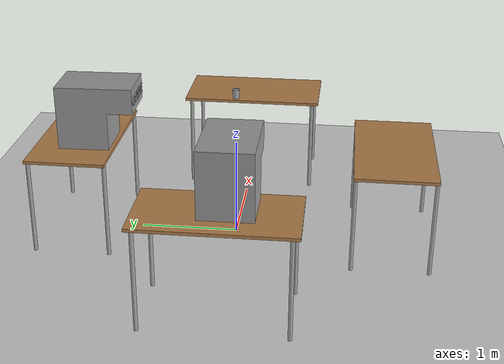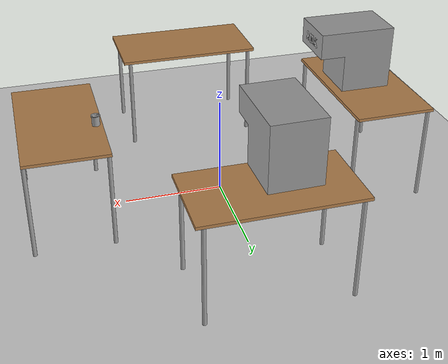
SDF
<sdf version="1.7">
 <world name="default">
  <model name="ground_plane">
   <static>1</static>
   <link name="link">
    <collision name="collision">
     <geometry><plane><normal>0 0 1</normal><size>100 100</size></plane></geometry>
     <surface><friction><ode><mu>100</mu><mu2>50</mu2></ode></friction></surface>
    </collision>
    <visual name="visual">
     <cast_shadows>0</cast_shadows>
     <geometry><plane><normal>0 0 1</normal><size>100 100</size></plane></geometry>
     <material>
      <script><uri>file://media/materials/scripts/gazebo.material</uri><name>Gazebo/Grey</name></script>
     </material>
    </visual>
   </link>
  </model>
  <light name="sun" type="directional">
   <pose>0 0 10 0 -0 0</pose>
   <diffuse>0.8 0.8 0.8 1</diffuse>
   <specular>0.2 0.2 0.2 1</specular>
   <attenuation>
    <range>1000</range>
    <constant>0.9</constant>
    <linear>0.01</linear>
    <quadratic>0.001</quadratic>
   </attenuation>
   <direction>-0.5 0.1 -0.9</direction>
   <spot><inner_angle>0</inner_angle><outer_angle>0</outer_angle><falloff>0</falloff></spot>
  </light>
  <scene><shadows>0</shadows><ambient>0.4 0.4 0.4 1</ambient><background>0.7 0.7 0.7 1</background></scene>
  <physics type="ode">
   <real_time_update_rate>1000</real_time_update_rate>
   <max_step_size>0.001</max_step_size>
   <real_time_factor>1</real_time_factor>
   <ode>
    <solver>
     <type>quick</type>
     <iters>150</iters>
     <precon_iters>0</precon_iters>
     <sor>1.4</sor>
     <use_dynamic_moi_rescaling>1</use_dynamic_moi_rescaling>
    </solver>
    <constraints>
     <cfm>1e-05</cfm>
     <erp>0.2</erp>
     <contact_max_correcting_vel>2000</contact_max_correcting_vel>
     <contact_surface_layer>0.01</contact_surface_layer>
    </constraints>
   </ode>
  </physics>
  <gravity>0 0 -9.8</gravity>
  <magnetic_field>6e-06 2.3e-05 -4.2e-05</magnetic_field>
  <atmosphere type="adiabatic"/>
  <spherical_coordinates>
   <surface_model>EARTH_WGS84</surface_model>
   <latitude_deg>0</latitude_deg>
   <longitude_deg>0</longitude_deg>
   <elevation>0</elevation>
   <heading_deg>0</heading_deg>
  </spherical_coordinates>
  <model name="Coffee_Shop_Model_V3">
   <link name="link_0">
    <inertial>
     <mass>1</mass>
     <inertia>
      <ixx>0.166667</ixx>
      <ixy>0</ixy>
      <ixz>0</ixz>
      <iyy>0.166667</iyy>
      <iyz>0</iyz>
      <izz>0.166667</izz>
     </inertia>
    </inertial>
    <pose>0.059933 1.25129 0.589943 1.57072 -0.004244 -1.55352</pose>
    <visual name="visual">
     <geometry>
      <mesh>
       <uri>/project_2_WS/src/barista_robot/worlds/coffee_machine_model/meshes/base_link.STL</uri>
       <scale>1 1 1</scale>
      </mesh>
     </geometry>
     <material>
      <lighting>1</lighting>
      <script><uri>file://media/materials/scripts/gazebo.material</uri><name>Gazebo/Grey</name></script>
      <shader type="pixel"/>
     </material>
    </visual>
    <collision name="collision">
     <geometry>
      <mesh>
       <uri>/project_2_WS/src/barista_robot/worlds/coffee_machine_model/meshes/base_link.STL</uri>
       <scale>1 1 1</scale>
      </mesh>
     </geometry>
     <surface>
      <friction>
       <ode><mu>1</mu><mu2>1</mu2><fdir1>0 0 0</fdir1><slip1>0</slip1><slip2>0</slip2></ode>
       <torsional>
        <coefficient>1</coefficient>
        <patch_radius>0</patch_radius>
        <surface_radius>0</surface_radius>
        <use_patch_radius>1</use_patch_radius>
        <ode><slip>0</slip></ode>
       </torsional>
      </friction>
      <bounce><restitution_coefficient>0</restitution_coefficient><threshold>1e+06</threshold></bounce>
      <contact>
       <collide_without_contact>0</collide_without_contact>
       <collide_without_contact_bitmask>1</collide_without_contact_bitmask>
       <collide_bitmask>1</collide_bitmask>
       <ode>
        <soft_cfm>0</soft_cfm>
        <soft_erp>0.2</soft_erp>
        <kp>1e+13</kp>
        <kd>1</kd>
        <max_vel>0.01</max_vel>
        <min_depth>0</min_depth>
       </ode>
       <bullet>
        <split_impulse>1</split_impulse>
        <split_impulse_penetration_threshold>-0.01</split_impulse_penetration_threshold>
        <soft_cfm>0</soft_cfm>
        <soft_erp>0.2</soft_erp>
        <kp>1e+13</kp>
        <kd>1</kd>
       </bullet>
      </contact>
     </surface>
    </collision>
   </link>
   <link name="link_1">
    <inertial>
     <mass>1</mass>
     <inertia>
      <ixx>0.166667</ixx>
      <ixy>0</ixy>
      <ixz>0</ixz>
      <iyy>0.166667</iyy>
      <iyz>0</iyz>
      <izz>0.166667</izz>
     </inertia>
    </inertial>
    <pose>-1.5311 -0.183448 0.584686 1.56674 -0 0</pose>
    <visual name="visual">
     <geometry>
      <mesh>
       <uri>/project_2_WS/src/barista_robot/worlds/milk_machine_model/meshes/base_link.STL</uri>
       <scale>1 1 1</scale>
      </mesh>
     </geometry>
     <material>
      <lighting>1</lighting>
      <script><uri>file://media/materials/scripts/gazebo.material</uri><name>Gazebo/Grey</name></script>
      <shader type="pixel"/>
     </material>
    </visual>
    <collision name="collision">
     <geometry>
      <mesh>
       <uri>/project_2_WS/src/barista_robot/worlds/milk_machine_model/meshes/base_link.STL</uri>
       <scale>1 1 1</scale>
      </mesh>
     </geometry>
     <surface>
      <friction>
       <ode><mu>1</mu><mu2>1</mu2><fdir1>0 0 0</fdir1><slip1>0</slip1><slip2>0</slip2></ode>
       <torsional>
        <coefficient>1</coefficient>
        <patch_radius>0</patch_radius>
        <surface_radius>0</surface_radius>
        <use_patch_radius>1</use_patch_radius>
        <ode><slip>0</slip></ode>
       </torsional>
      </friction>
      <bounce><restitution_coefficient>0</restitution_coefficient><threshold>1e+06</threshold></bounce>
      <contact>
       <collide_without_contact>0</collide_without_contact>
       <collide_without_contact_bitmask>1</collide_without_contact_bitmask>
       <collide_bitmask>1</collide_bitmask>
       <ode>
        <soft_cfm>0</soft_cfm>
        <soft_erp>0.2</soft_erp>
        <kp>1e+13</kp>
        <kd>1</kd>
        <max_vel>0.01</max_vel>
        <min_depth>0</min_depth>
       </ode>
       <bullet>
        <split_impulse>1</split_impulse>
        <split_impulse_penetration_threshold>-0.01</split_impulse_penetration_threshold>
        <soft_cfm>0</soft_cfm>
        <soft_erp>0.2</soft_erp>
        <kp>1e+13</kp>
        <kd>1</kd>
       </bullet>
      </contact>
     </surface>
    </collision>
   </link>
   <link name="link_2">
    <inertial>
     <mass>1</mass>
     <inertia>
      <ixx>0.166667</ixx>
      <ixy>0</ixy>
      <ixz>0</ixz>
      <iyy>0.166667</iyy>
      <iyz>0</iyz>
      <izz>0.166667</izz>
     </inertia>
    </inertial>
    <pose>1.2927 -0.079798 0.581572 0 -0 0</pose>
    <visual name="visual">
     <geometry>
      <mesh>
       <uri>/project_2_WS/src/barista_robot/worlds/coffee_cup_with_rim_model/meshes/base_link.STL</uri>
       <scale>1 1 1</scale>
      </mesh>
     </geometry>
     <material>
      <lighting>1</lighting>
      <script><uri>file://media/materials/scripts/gazebo.material</uri><name>Gazebo/Grey</name></script>
      <shader type="pixel"/>
     </material>
    </visual>
    <collision name="collision">
     <geometry>
      <mesh>
       <uri>/project_2_WS/src/barista_robot/worlds/coffee_cup_with_rim_model/meshes/base_link.STL</uri>
       <scale>1 1 1</scale>
      </mesh>
     </geometry>
     <surface>
      <friction>
       <ode><mu>1</mu><mu2>1</mu2><fdir1>0 0 0</fdir1><slip1>0</slip1><slip2>0</slip2></ode>
       <torsional>
        <coefficient>1</coefficient>
        <patch_radius>0</patch_radius>
        <surface_radius>0</surface_radius>
        <use_patch_radius>1</use_patch_radius>
        <ode><slip>0</slip></ode>
       </torsional>
      </friction>
      <bounce><restitution_coefficient>0</restitution_coefficient><threshold>1e+06</threshold></bounce>
      <contact>
       <collide_without_contact>0</collide_without_contact>
       <collide_without_contact_bitmask>1</collide_without_contact_bitmask>
       <collide_bitmask>1</collide_bitmask>
       <ode>
        <soft_cfm>0</soft_cfm>
        <soft_erp>0.2</soft_erp>
        <kp>1e+13</kp>
        <kd>1</kd>
        <max_vel>0.01</max_vel>
        <min_depth>0</min_depth>
       </ode>
       <bullet>
        <split_impulse>1</split_impulse>
        <split_impulse_penetration_threshold>-0.01</split_impulse_penetration_threshold>
        <soft_cfm>0</soft_cfm>
        <soft_erp>0.2</soft_erp>
        <kp>1e+13</kp>
        <kd>1</kd>
       </bullet>
      </contact>
     </surface>
    </collision>
   </link>
   <model name="table">
    <static>1</static>
    <link name="link">
     <collision name="surface">
      <pose>0 0 1 0 -0 0</pose>
      <geometry><box><size>1.5 0.8 0.03</size></box></geometry>
      <surface><friction><ode><mu>0.6</mu><mu2>0.6</mu2></ode></friction></surface>
     </collision>
     <visual name="visual1">
      <pose>0 0 1 0 -0 0</pose>
      <geometry><box><size>1.5 0.8 0.03</size></box></geometry>
      <material>
       <script><uri>file://media/materials/scripts/gazebo.material</uri><name>Gazebo/Wood</name></script>
      </material>
     </visual>
     <collision name="front_left_leg">
      <pose>0.68 0.38 0.5 0 -0 0</pose>
      <geometry><cylinder><radius>0.02</radius><length>1</length></cylinder></geometry>
     </collision>
     <visual name="front_left_leg">
      <pose>0.68 0.38 0.5 0 -0 0</pose>
      <geometry><cylinder><radius>0.02</radius><length>1</length></cylinder></geometry>
      <material>
       <script><uri>file://media/materials/scripts/gazebo.material</uri><name>Gazebo/Grey</name></script>
      </material>
     </visual>
     <collision name="front_right_leg">
      <pose>0.68 -0.38 0.5 0 -0 0</pose>
      <geometry><cylinder><radius>0.02</radius><length>1</length></cylinder></geometry>
     </collision>
     <visual name="front_right_leg">
      <pose>0.68 -0.38 0.5 0 -0 0</pose>
      <geometry><cylinder><radius>0.02</radius><length>1</length></cylinder></geometry>
      <material>
       <script><uri>file://media/materials/scripts/gazebo.material</uri><name>Gazebo/Grey</name></script>
      </material>
     </visual>
     <collision name="back_right_leg">
      <pose>-0.68 -0.38 0.5 0 -0 0</pose>
      <geometry><cylinder><radius>0.02</radius><length>1</length></cylinder></geometry>
     </collision>
     <visual name="back_right_leg">
      <pose>-0.68 -0.38 0.5 0 -0 0</pose>
      <geometry><cylinder><radius>0.02</radius><length>1</length></cylinder></geometry>
      <material>
       <script><uri>file://media/materials/scripts/gazebo.material</uri><name>Gazebo/Grey</name></script>
      </material>
     </visual>
     <collision name="back_left_leg">
      <pose>-0.68 0.38 0.5 0 -0 0</pose>
      <geometry><cylinder><radius>0.02</radius><length>1</length></cylinder></geometry>
     </collision>
     <visual name="back_left_leg">
      <pose>-0.68 0.38 0.5 0 -0 0</pose>
      <geometry><cylinder><radius>0.02</radius><length>1</length></cylinder></geometry>
      <material>
       <script><uri>file://media/materials/scripts/gazebo.material</uri><name>Gazebo/Grey</name></script>
      </material>
     </visual>
    </link>
    <pose>1.62877 -0.26315 -0.43905 0 -0 1.56526</pose>
   </model>
   <model name="table_0">
    <static>1</static>
    <link name="link">
     <collision name="surface">
      <pose>0 0 1 0 -0 0</pose>
      <geometry><box><size>1.5 0.8 0.03</size></box></geometry>
      <surface><friction><ode><mu>0.6</mu><mu2>0.6</mu2></ode></friction></surface>
     </collision>
     <visual name="visual1">
      <pose>0 0 1 0 -0 0</pose>
      <geometry><box><size>1.5 0.8 0.03</size></box></geometry>
      <material>
       <script><uri>file://media/materials/scripts/gazebo.material</uri><name>Gazebo/Wood</name></script>
      </material>
     </visual>
     <collision name="front_left_leg">
      <pose>0.68 0.38 0.5 0 -0 0</pose>
      <geometry><cylinder><radius>0.02</radius><length>1</length></cylinder></geometry>
     </collision>
     <visual name="front_left_leg">
      <pose>0.68 0.38 0.5 0 -0 0</pose>
      <geometry><cylinder><radius>0.02</radius><length>1</length></cylinder></geometry>
      <material>
       <script><uri>file://media/materials/scripts/gazebo.material</uri><name>Gazebo/Grey</name></script>
      </material>
     </visual>
     <collision name="front_right_leg">
      <pose>0.68 -0.38 0.5 0 -0 0</pose>
      <geometry><cylinder><radius>0.02</radius><length>1</length></cylinder></geometry>
     </collision>
     <visual name="front_right_leg">
      <pose>0.68 -0.38 0.5 0 -0 0</pose>
      <geometry><cylinder><radius>0.02</radius><length>1</length></cylinder></geometry>
      <material>
       <script><uri>file://media/materials/scripts/gazebo.material</uri><name>Gazebo/Grey</name></script>
      </material>
     </visual>
     <collision name="back_right_leg">
      <pose>-0.68 -0.38 0.5 0 -0 0</pose>
      <geometry><cylinder><radius>0.02</radius><length>1</length></cylinder></geometry>
     </collision>
     <visual name="back_right_leg">
      <pose>-0.68 -0.38 0.5 0 -0 0</pose>
      <geometry><cylinder><radius>0.02</radius><length>1</length></cylinder></geometry>
      <material>
       <script><uri>file://media/materials/scripts/gazebo.material</uri><name>Gazebo/Grey</name></script>
      </material>
     </visual>
     <collision name="back_left_leg">
      <pose>-0.68 0.38 0.5 0 -0 0</pose>
      <geometry><cylinder><radius>0.02</radius><length>1</length></cylinder></geometry>
     </collision>
     <visual name="back_left_leg">
      <pose>-0.68 0.38 0.5 0 -0 0</pose>
      <geometry><cylinder><radius>0.02</radius><length>1</length></cylinder></geometry>
      <material>
       <script><uri>file://media/materials/scripts/gazebo.material</uri><name>Gazebo/Grey</name></script>
      </material>
     </visual>
    </link>
    <pose>0.052371 1.36 -0.43905 0 -0 0</pose>
   </model>
   <model name="table_1">
    <static>1</static>
    <link name="link">
     <collision name="surface">
      <pose>0 0 1 0 -0 0</pose>
      <geometry><box><size>1.5 0.8 0.03</size></box></geometry>
      <surface><friction><ode><mu>0.6</mu><mu2>0.6</mu2></ode></friction></surface>
     </collision>
     <visual name="visual1">
      <pose>0 0 1 0 -0 0</pose>
      <geometry><box><size>1.5 0.8 0.03</size></box></geometry>
      <material>
       <script><uri>file://media/materials/scripts/gazebo.material</uri><name>Gazebo/Wood</name></script>
      </material>
     </visual>
     <collision name="front_left_leg">
      <pose>0.68 0.38 0.5 0 -0 0</pose>
      <geometry><cylinder><radius>0.02</radius><length>1</length></cylinder></geometry>
     </collision>
     <visual name="front_left_leg">
      <pose>0.68 0.38 0.5 0 -0 0</pose>
      <geometry><cylinder><radius>0.02</radius><length>1</length></cylinder></geometry>
      <material>
       <script><uri>file://media/materials/scripts/gazebo.material</uri><name>Gazebo/Grey</name></script>
      </material>
     </visual>
     <collision name="front_right_leg">
      <pose>0.68 -0.38 0.5 0 -0 0</pose>
      <geometry><cylinder><radius>0.02</radius><length>1</length></cylinder></geometry>
     </collision>
     <visual name="front_right_leg">
      <pose>0.68 -0.38 0.5 0 -0 0</pose>
      <geometry><cylinder><radius>0.02</radius><length>1</length></cylinder></geometry>
      <material>
       <script><uri>file://media/materials/scripts/gazebo.material</uri><name>Gazebo/Grey</name></script>
      </material>
     </visual>
     <collision name="back_right_leg">
      <pose>-0.68 -0.38 0.5 0 -0 0</pose>
      <geometry><cylinder><radius>0.02</radius><length>1</length></cylinder></geometry>
     </collision>
     <visual name="back_right_leg">
      <pose>-0.68 -0.38 0.5 0 -0 0</pose>
      <geometry><cylinder><radius>0.02</radius><length>1</length></cylinder></geometry>
      <material>
       <script><uri>file://media/materials/scripts/gazebo.material</uri><name>Gazebo/Grey</name></script>
      </material>
     </visual>
     <collision name="back_left_leg">
      <pose>-0.68 0.38 0.5 0 -0 0</pose>
      <geometry><cylinder><radius>0.02</radius><length>1</length></cylinder></geometry>
     </collision>
     <visual name="back_left_leg">
      <pose>-0.68 0.38 0.5 0 -0 0</pose>
      <geometry><cylinder><radius>0.02</radius><length>1</length></cylinder></geometry>
      <material>
       <script><uri>file://media/materials/scripts/gazebo.material</uri><name>Gazebo/Grey</name></script>
      </material>
     </visual>
    </link>
    <pose>0.035425 -1.82696 -0.43905 0 -0 0</pose>
   </model>
   <model name="table_2">
    <static>1</static>
    <link name="link">
     <collision name="surface">
      <pose>0 0 1 0 -0 0</pose>
      <geometry><box><size>1.5 0.8 0.03</size></box></geometry>
      <surface><friction><ode><mu>0.6</mu><mu2>0.6</mu2></ode></friction></surface>
     </collision>
     <visual name="visual1">
      <pose>0 0 1 0 -0 0</pose>
      <geometry><box><size>1.5 0.8 0.03</size></box></geometry>
      <material>
       <script><uri>file://media/materials/scripts/gazebo.material</uri><name>Gazebo/Wood</name></script>
      </material>
     </visual>
     <collision name="front_left_leg">
      <pose>0.68 0.38 0.5 0 -0 0</pose>
      <geometry><cylinder><radius>0.02</radius><length>1</length></cylinder></geometry>
     </collision>
     <visual name="front_left_leg">
      <pose>0.68 0.38 0.5 0 -0 0</pose>
      <geometry><cylinder><radius>0.02</radius><length>1</length></cylinder></geometry>
      <material>
       <script><uri>file://media/materials/scripts/gazebo.material</uri><name>Gazebo/Grey</name></script>
      </material>
     </visual>
     <collision name="front_right_leg">
      <pose>0.68 -0.38 0.5 0 -0 0</pose>
      <geometry><cylinder><radius>0.02</radius><length>1</length></cylinder></geometry>
     </collision>
     <visual name="front_right_leg">
      <pose>0.68 -0.38 0.5 0 -0 0</pose>
      <geometry><cylinder><radius>0.02</radius><length>1</length></cylinder></geometry>
      <material>
       <script><uri>file://media/materials/scripts/gazebo.material</uri><name>Gazebo/Grey</name></script>
      </material>
     </visual>
     <collision name="back_right_leg">
      <pose>-0.68 -0.38 0.5 0 -0 0</pose>
      <geometry><cylinder><radius>0.02</radius><length>1</length></cylinder></geometry>
     </collision>
     <visual name="back_right_leg">
      <pose>-0.68 -0.38 0.5 0 -0 0</pose>
      <geometry><cylinder><radius>0.02</radius><length>1</length></cylinder></geometry>
      <material>
       <script><uri>file://media/materials/scripts/gazebo.material</uri><name>Gazebo/Grey</name></script>
      </material>
     </visual>
     <collision name="back_left_leg">
      <pose>-0.68 0.38 0.5 0 -0 0</pose>
      <geometry><cylinder><radius>0.02</radius><length>1</length></cylinder></geometry>
     </collision>
     <visual name="back_left_leg">
      <pose>-0.68 0.38 0.5 0 -0 0</pose>
      <geometry><cylinder><radius>0.02</radius><length>1</length></cylinder></geometry>
      <material>
       <script><uri>file://media/materials/scripts/gazebo.material</uri><name>Gazebo/Grey</name></script>
      </material>
     </visual>
    </link>
    <pose>-1.5381 -0.257927 -0.43905 0 0 -1.56447</pose>
   </model>
   <static>0</static>
   <pose>-0.034477 0.236046 0.43905 0 -0 0</pose>
  </model>
 </world>
</sdf>
